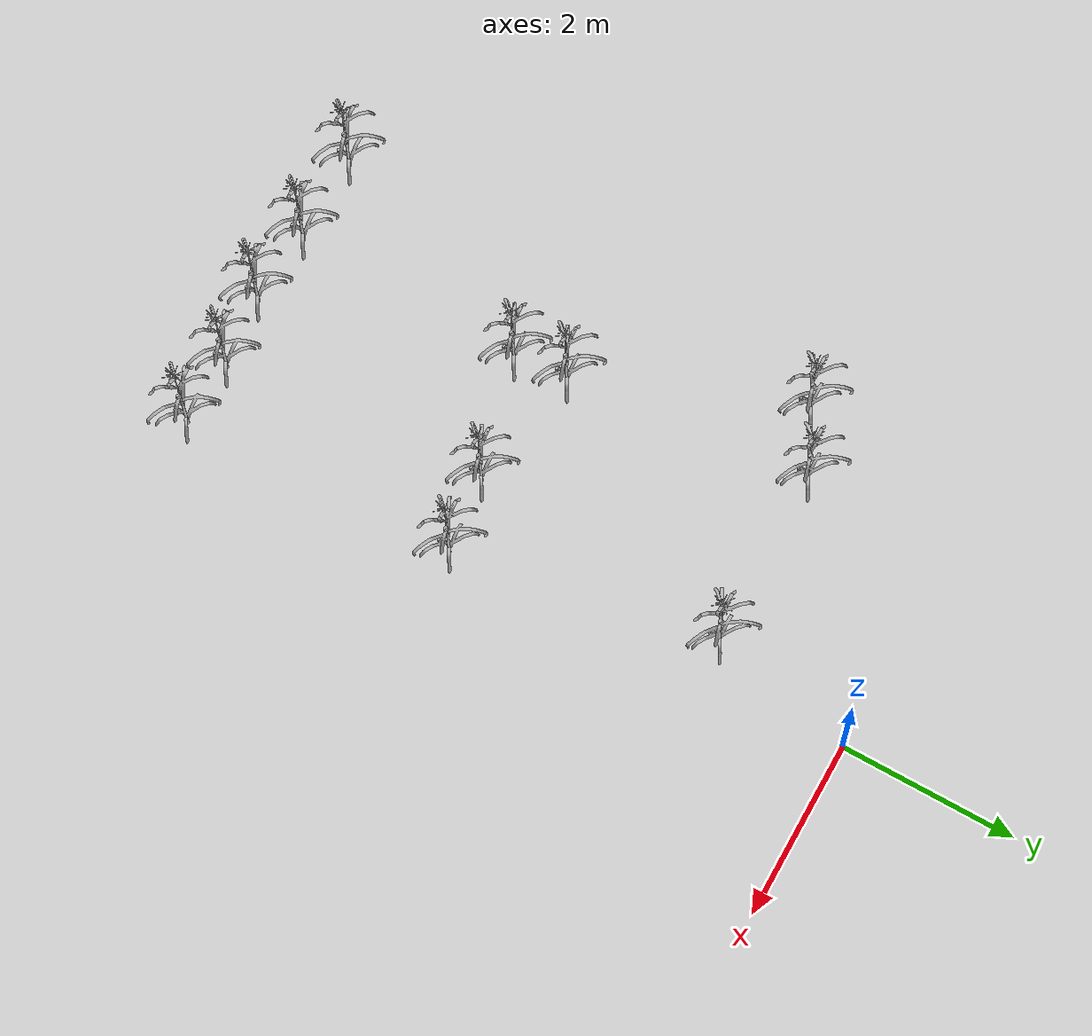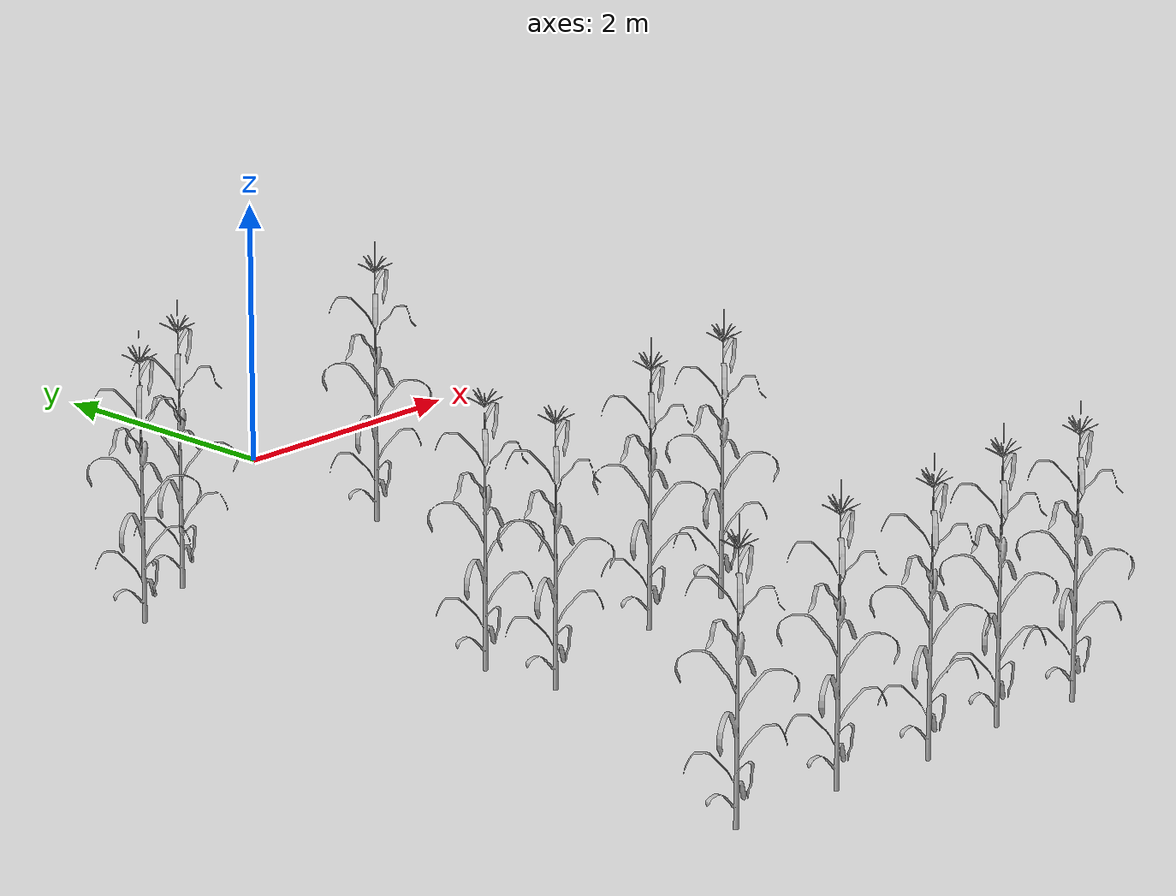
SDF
<sdf version="1.6">
 <world name="default">
  <model name="corn_stalk2_clone_4">
   <static>1</static>
   <link name="corn_stalk2_link">
    <collision name="collision">
     <geometry><mesh><scale>1 1 1</scale><uri>model://corn_type2/meshes/model.stl</uri></mesh></geometry>
    </collision>
    <visual name="corn_stalk2_visual">
     <geometry><mesh><uri>model://corn_type2/meshes/model.stl</uri><scale>1 1 1</scale></mesh></geometry>
     <material>
      <script>
       <uri>model://corn_type2/materials/scripts</uri>
       <uri>model://corn_type2/materials/textures</uri>
       <name>corn_type2/Diffuse</name>
      </script>
     </material>
    </visual>
   </link>
   <pose>0.235112 -7.68966 0 0 -0 0</pose>
  </model>
  <model name="corn_stalk2_clone_5">
   <static>1</static>
   <link name="corn_stalk2_link">
    <collision name="collision">
     <geometry><mesh><scale>1 1 1</scale><uri>model://corn_type2/meshes/model.stl</uri></mesh></geometry>
    </collision>
    <visual name="corn_stalk2_visual">
     <geometry><mesh><uri>model://corn_type2/meshes/model.stl</uri><scale>1 1 1</scale></mesh></geometry>
     <material>
      <script>
       <uri>model://corn_type2/materials/scripts</uri>
       <uri>model://corn_type2/materials/textures</uri>
       <name>corn_type2/Diffuse</name>
      </script>
     </material>
    </visual>
   </link>
   <pose>-0.488561 -7.62294 0 0 -0 0</pose>
  </model>
  <model name="corn_stalk2_clone_6">
   <static>1</static>
   <link name="corn_stalk2_link">
    <collision name="collision">
     <geometry><mesh><scale>1 1 1</scale><uri>model://corn_type2/meshes/model.stl</uri></mesh></geometry>
    </collision>
    <visual name="corn_stalk2_visual">
     <geometry><mesh><uri>model://corn_type2/meshes/model.stl</uri><scale>1 1 1</scale></mesh></geometry>
     <material>
      <script>
       <uri>model://corn_type2/materials/scripts</uri>
       <uri>model://corn_type2/materials/textures</uri>
       <name>corn_type2/Diffuse</name>
      </script>
     </material>
    </visual>
   </link>
   <pose>-1.27435 -7.68641 0 0 -0 0</pose>
  </model>
  <model name="corn_stalk2_clone_7">
   <static>1</static>
   <link name="corn_stalk2_link">
    <collision name="collision">
     <geometry><mesh><scale>1 1 1</scale><uri>model://corn_type2/meshes/model.stl</uri></mesh></geometry>
    </collision>
    <visual name="corn_stalk2_visual">
     <geometry><mesh><uri>model://corn_type2/meshes/model.stl</uri><scale>1 1 1</scale></mesh></geometry>
     <material>
      <script>
       <uri>model://corn_type2/materials/scripts</uri>
       <uri>model://corn_type2/materials/textures</uri>
       <name>corn_type2/Diffuse</name>
      </script>
     </material>
    </visual>
   </link>
   <pose>-2.09553 -7.59821 0 0 -0 0</pose>
  </model>
  <model name="corn_stalk2_clone_8">
   <static>1</static>
   <link name="corn_stalk2_link">
    <collision name="collision">
     <geometry><mesh><scale>1 1 1</scale><uri>model://corn_type2/meshes/model.stl</uri></mesh></geometry>
    </collision>
    <visual name="corn_stalk2_visual">
     <geometry><mesh><uri>model://corn_type2/meshes/model.stl</uri><scale>1 1 1</scale></mesh></geometry>
     <material>
      <script>
       <uri>model://corn_type2/materials/scripts</uri>
       <uri>model://corn_type2/materials/textures</uri>
       <name>corn_type2/Diffuse</name>
      </script>
     </material>
    </visual>
   </link>
   <pose>-3.0468 -7.57099 0 0 -0 0</pose>
  </model>
  <model name="corn_stalk2_clone_16">
   <static>1</static>
   <link name="corn_stalk2_link">
    <collision name="collision">
     <geometry><mesh><scale>1 1 1</scale><uri>model://corn_type2/meshes/model.stl</uri></mesh></geometry>
    </collision>
    <visual name="corn_stalk2_visual">
     <geometry><mesh><uri>model://corn_type2/meshes/model.stl</uri><scale>1 1 1</scale></mesh></geometry>
     <material>
      <script>
       <uri>model://corn_type2/materials/scripts</uri>
       <uri>model://corn_type2/materials/textures</uri>
       <name>corn_type2/Diffuse</name>
      </script>
     </material>
    </visual>
   </link>
   <pose>-2 -5 0 0 -0 0</pose>
  </model>
  <model name="corn_stalk2_clone_17">
   <static>1</static>
   <link name="corn_stalk2_link">
    <collision name="collision">
     <geometry><mesh><scale>1 1 1</scale><uri>model://corn_type2/meshes/model.stl</uri></mesh></geometry>
    </collision>
    <visual name="corn_stalk2_visual">
     <geometry><mesh><uri>model://corn_type2/meshes/model.stl</uri><scale>1 1 1</scale></mesh></geometry>
     <material>
      <script>
       <uri>model://corn_type2/materials/scripts</uri>
       <uri>model://corn_type2/materials/textures</uri>
       <name>corn_type2/Diffuse</name>
      </script>
     </material>
    </visual>
   </link>
   <pose>-0.691262 -4.66763 0 0 -0 0</pose>
  </model>
  <model name="corn_stalk2_clone_18">
   <static>1</static>
   <link name="corn_stalk2_link">
    <collision name="collision">
     <geometry><mesh><scale>1 1 1</scale><uri>model://corn_type2/meshes/model.stl</uri></mesh></geometry>
    </collision>
    <visual name="corn_stalk2_visual">
     <geometry><mesh><uri>model://corn_type2/meshes/model.stl</uri><scale>1 1 1</scale></mesh></geometry>
     <material>
      <script>
       <uri>model://corn_type2/materials/scripts</uri>
       <uri>model://corn_type2/materials/textures</uri>
       <name>corn_type2/Diffuse</name>
      </script>
     </material>
    </visual>
   </link>
   <pose>0.141255 -4.59231 0 0 -0 0</pose>
  </model>
  <model name="corn_stalk2_clone_31">
   <static>1</static>
   <link name="corn_stalk2_link">
    <collision name="collision">
     <geometry><mesh><scale>1 1 1</scale><uri>model://corn_type2/meshes/model.stl</uri></mesh></geometry>
    </collision>
    <visual name="corn_stalk2_visual">
     <geometry><mesh><uri>model://corn_type2/meshes/model.stl</uri><scale>1 1 1</scale></mesh></geometry>
     <material>
      <script>
       <uri>model://corn_type2/materials/scripts</uri>
       <uri>model://corn_type2/materials/textures</uri>
       <name>corn_type2/Diffuse</name>
      </script>
     </material>
    </visual>
   </link>
   <pose>-0.35089 -1.65586 0 0 -0 0</pose>
  </model>
  <model name="corn_stalk2_clone_33">
   <static>1</static>
   <link name="corn_stalk2_link">
    <collision name="collision">
     <geometry><mesh><scale>1 1 1</scale><uri>model://corn_type2/meshes/model.stl</uri></mesh></geometry>
    </collision>
    <visual name="corn_stalk2_visual">
     <geometry><mesh><uri>model://corn_type2/meshes/model.stl</uri><scale>1 1 1</scale></mesh></geometry>
     <material>
      <script>
       <uri>model://corn_type2/materials/scripts</uri>
       <uri>model://corn_type2/materials/textures</uri>
       <name>corn_type2/Diffuse</name>
      </script>
     </material>
    </visual>
   </link>
   <pose>-2.32192 -1.66801 0 0 -0 0</pose>
  </model>
  <model name="corn_stalk2_clone_34">
   <static>1</static>
   <link name="corn_stalk2_link">
    <collision name="collision">
     <geometry><mesh><scale>1 1 1</scale><uri>model://corn_type2/meshes/model.stl</uri></mesh></geometry>
    </collision>
    <visual name="corn_stalk2_visual">
     <geometry><mesh><uri>model://corn_type2/meshes/model.stl</uri><scale>1 1 1</scale></mesh></geometry>
     <material>
      <script>
       <uri>model://corn_type2/materials/scripts</uri>
       <uri>model://corn_type2/materials/textures</uri>
       <name>corn_type2/Diffuse</name>
      </script>
     </material>
    </visual>
   </link>
   <pose>-3 -2 0 0 -0 0</pose>
  </model>
  <model name="corn_stalk2_0">
   <static>1</static>
   <link name="corn_stalk2_link">
    <collision name="collision">
     <geometry><mesh><scale>1 1 1</scale><uri>model://corn_type2/meshes/model.stl</uri></mesh></geometry>
    </collision>
    <visual name="corn_stalk2_visual">
     <geometry><mesh><uri>model://corn_type2/meshes/model.stl</uri><scale>1 1 1</scale></mesh></geometry>
     <material>
      <script>
       <uri>model://corn_type2/materials/scripts</uri>
       <uri>model://corn_type2/materials/textures</uri>
       <name>corn_type2/Diffuse</name>
      </script>
     </material>
    </visual>
   </link>
   <pose>-2.05633 -4.39581 0 0 -0 0</pose>
  </model>
 </world>
</sdf>
